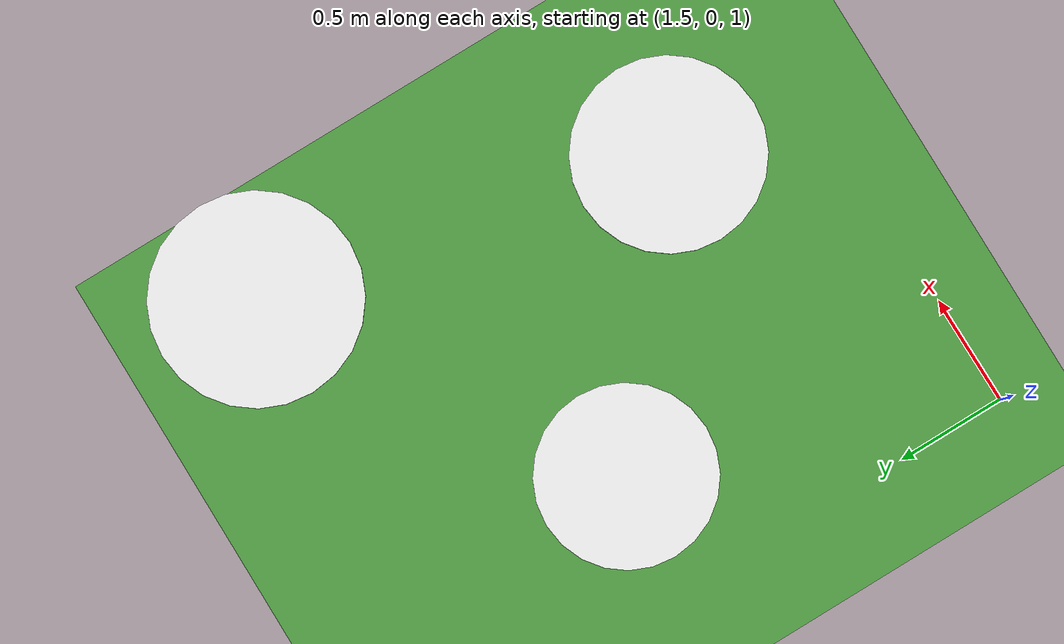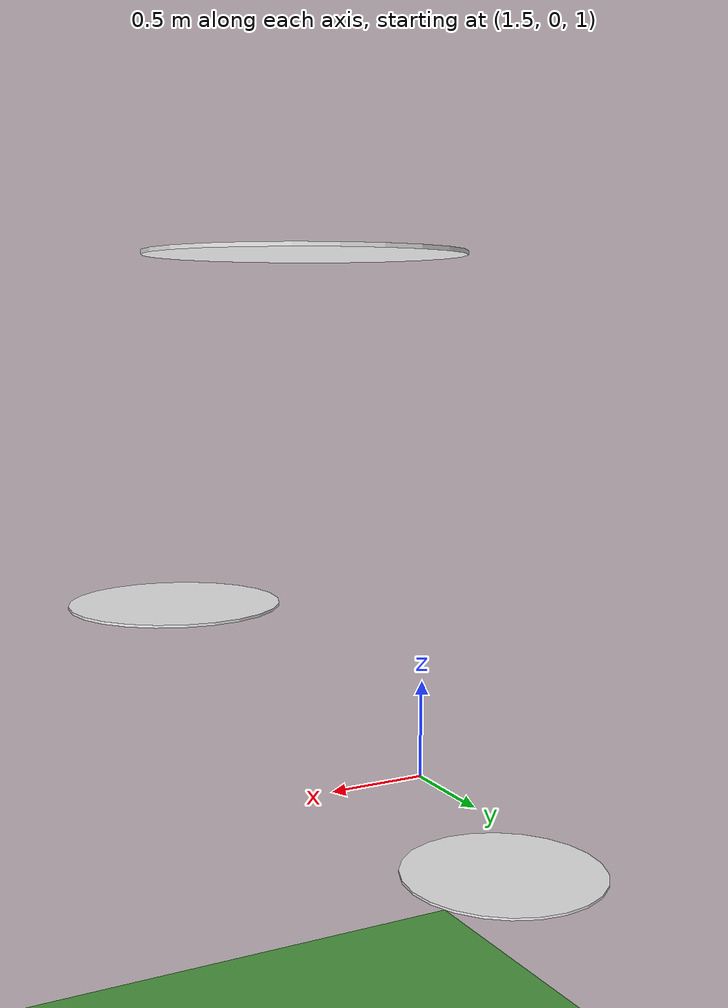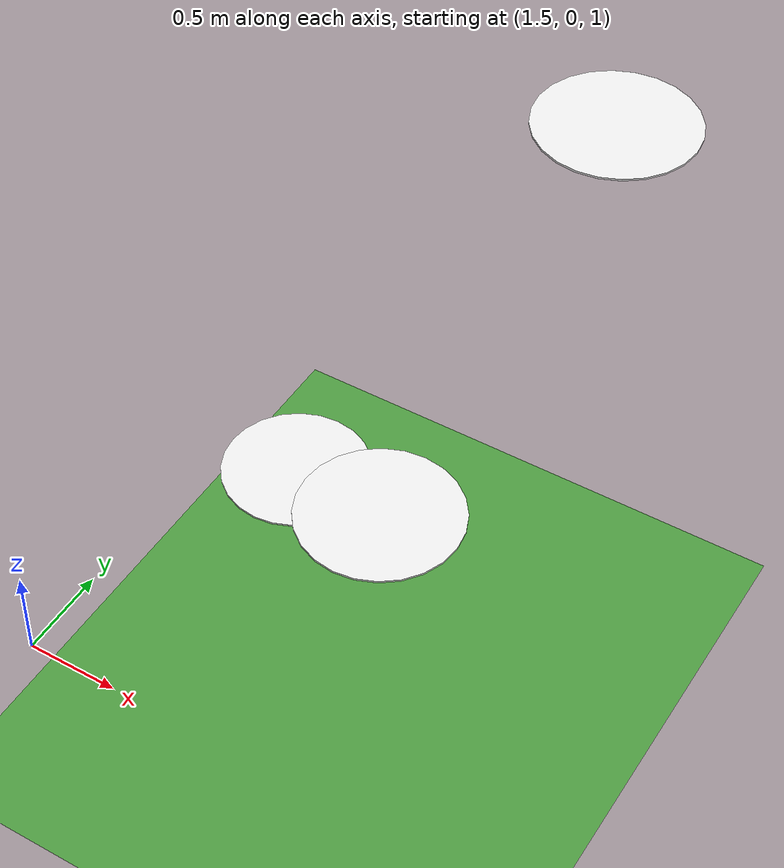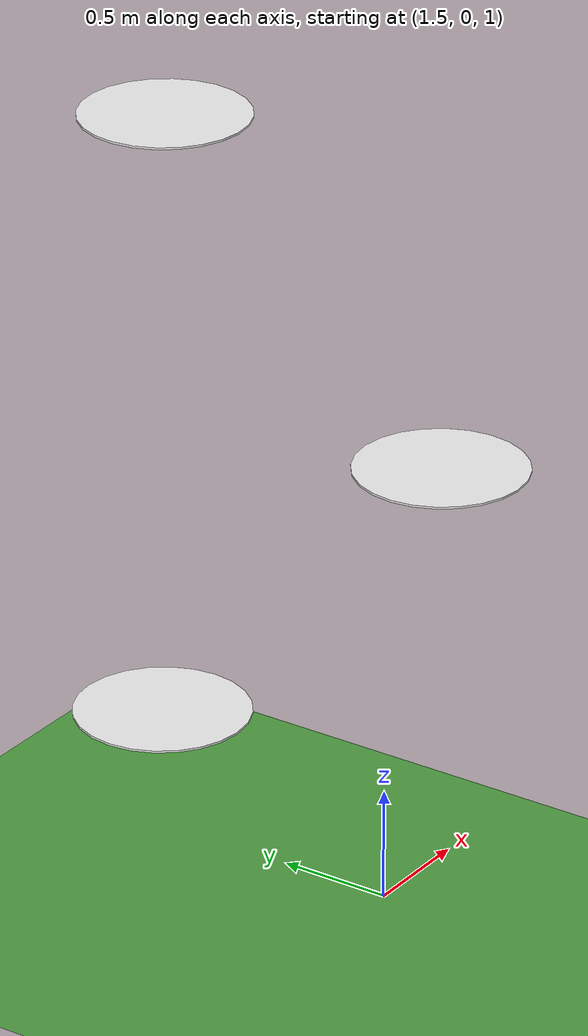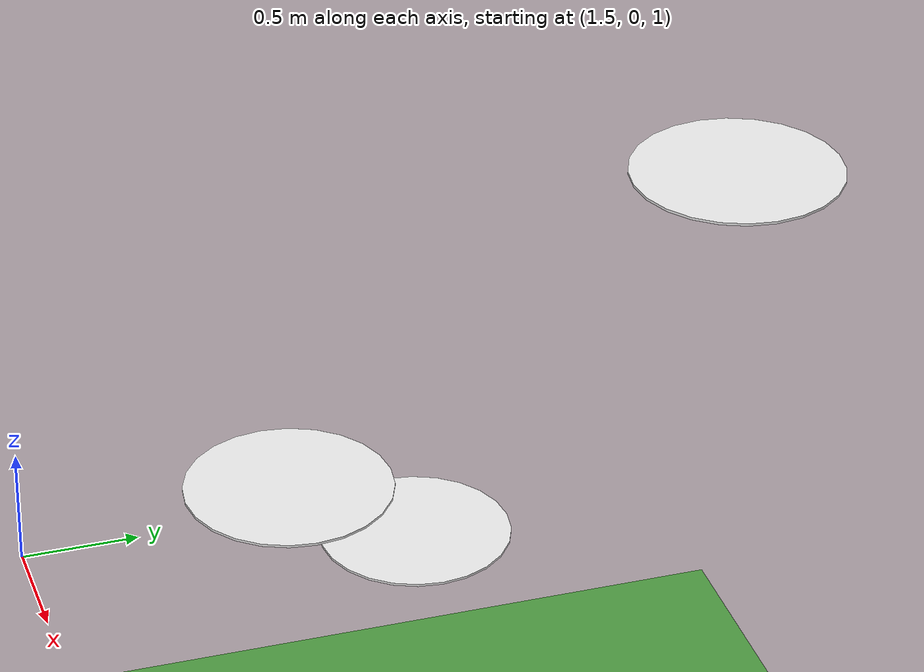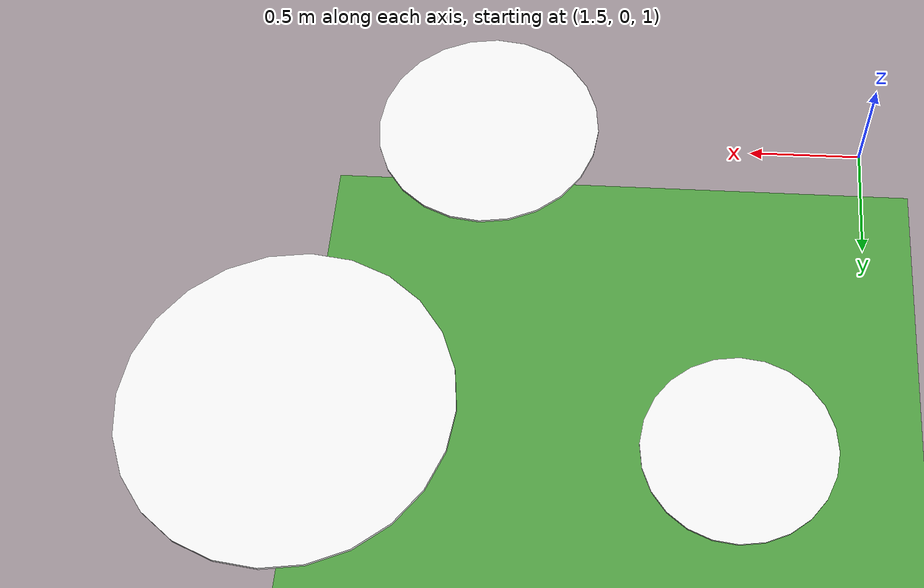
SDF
<sdf version='1.7'>
<world name='default'>
<!-- Light source -->
  <include>
    <uri>model://sun</uri>
  </include>

<!-- the grassy ground plane -->
<model name="my_ground_plane">
  <static>true</static>
    <link name="link">
      <collision name="collision">
        <geometry>
          <plane>
            <normal>0 0 1</normal>
            <size>100 100</size>
          </plane>
        </geometry>
        <surface>
          <friction>
            <ode>
              <mu>100</mu>
              <mu2>50</mu2>
            </ode>
          </friction>
        </surface>
      </collision>
      <visual name="visual">
        <cast_shadows>false</cast_shadows>
        <geometry>
          <plane>
            <normal>0 0 1</normal>
            <size>100 100</size>
          </plane>
        </geometry>
        <material>
          <script>
            <name>Gazebo/Grass</name>
            <uri>file://media/materials/scripts/gazebo.material</uri>
          </script>
        </material>
      </visual>
    </link>
  </model>

<!-- the potholes -->
<model name='pothole1'>
  <pose>2.06 1.55 1.19 0 0 0</pose>
  <link name='link'>
    <inertial>
      <mass>1</mass>
      <inertia>
        <ixx>1</ixx>
        <ixy>1</ixy>
        <ixz>1</ixz>
        <iyy>1</iyy>
        <iyz>1</iyz>
        <izz>1.125</izz>
      </inertia>
      <pose>0 0 0 0 0 0</pose>
    </inertial>
    <collision name='collision'>
      <geometry>
        <cylinder>
          <radius>0.5</radius>
          <length>0.05</length>
        </cylinder>
      </geometry>
    </collision>
    <visual name='visual'>
      <geometry>
        <cylinder>
          <radius>0.4</radius>
          <length>0.01</length>
        </cylinder>
      </geometry>
      <material>
        <script>
          <name>Gazebo/WhiteGlow</name>
          <uri>file://media/materials/scripts/gazebo.material</uri>
        </script>
      </material>
    </visual>
    <self_collide>0</self_collide>
    <enable_wind>0</enable_wind>
    <kinematic>0</kinematic>
  </link>
</model>

<model name='pothole2'>
  <pose>3.06 0.75 2.19 0 0 0</pose>
  <link name='link'>
    <inertial>
      <mass>1</mass>
      <inertia>
        <ixx>1</ixx>
        <ixy>1</ixy>
        <ixz>1</ixz>
        <iyy>1</iyy>
        <iyz>1</iyz>
        <izz>1.125</izz>
      </inertia>
      <pose>0 0 0 0 0 0</pose>
    </inertial>
    <collision name='collision'>
      <geometry>
        <cylinder>
          <radius>0.5</radius>
          <length>0.05</length>
        </cylinder>
      </geometry>
    </collision>
    <visual name='visual'>
      <geometry>
        <cylinder>
          <radius>0.4</radius>
          <length>0.01</length>
        </cylinder>
      </geometry>
      <material>
        <script>
          <name>Gazebo/WhiteGlow</name>
          <uri>file://media/materials/scripts/gazebo.material</uri>
        </script>
      </material>
    </visual>
    <self_collide>0</self_collide>
    <enable_wind>0</enable_wind>
    <kinematic>0</kinematic>
  </link>
</model>
<model name='pothole3'>
  <pose>3.3 2.4 3.4 0 0 0</pose>
  <link name='link'>
    <inertial>
      <mass>1</mass>
      <inertia>
        <ixx>1</ixx>
        <ixy>1</ixy>
        <ixz>1</ixz>
        <iyy>1</iyy>
        <iyz>1</iyz>
        <izz>1.125</izz>
      </inertia>
      <pose>0 0 0 0 0 0</pose>
    </inertial>
    <collision name='collision'>
      <geometry>
        <cylinder>
          <radius>0.5</radius>
          <length>0.05</length>
        </cylinder>
      </geometry>
    </collision>
    <visual name='visual'>
      <geometry>
        <cylinder>
          <radius>0.4</radius>
          <length>0.01</length>
        </cylinder>
      </geometry>
      <material>
        <script>
          <name>Gazebo/WhiteGlow</name>
          <uri>file://media/materials/scripts/gazebo.material</uri>
        </script>
      </material>
    </visual>
    <self_collide>0</self_collide>
    <enable_wind>0</enable_wind>
    <kinematic>0</kinematic>
  </link>
</model>

  </world>
</sdf>
